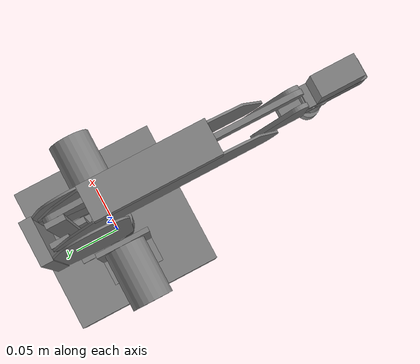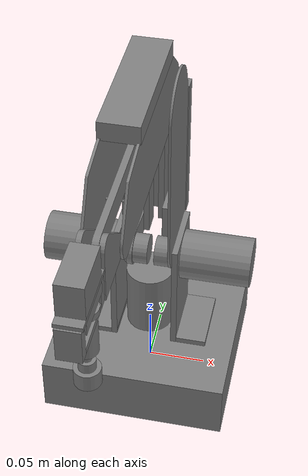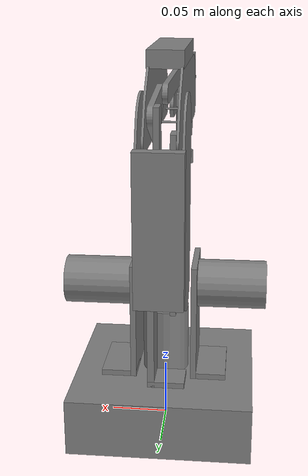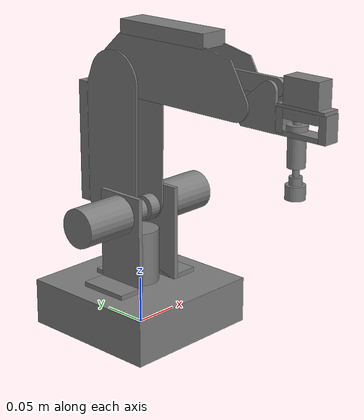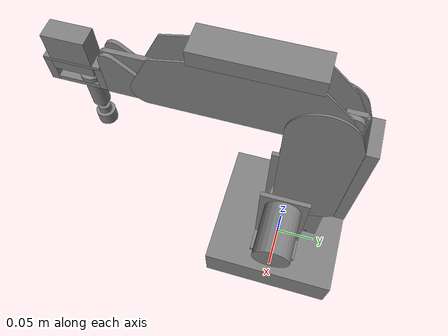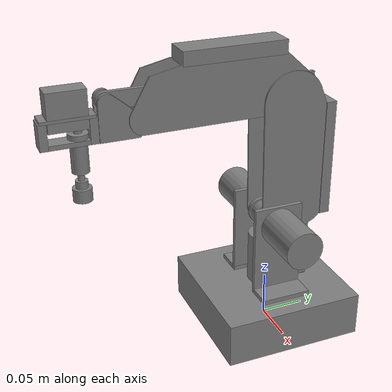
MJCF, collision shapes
<mujoco model="Dobot">
  <compiler angle="radian" meshdir="meshes/" />
  <option timestep="1e-3" solver="Newton" integrator="Euler"/>

  <asset>
    <mesh name="dobot_coppelia_link1_visible_vis_1" content_type="model/stl"
      file="dobot_coppelia_link1_visible_vis_1.stl" />
    <mesh name="dobot_coppelia_link1_visible_vis_2" content_type="model/stl"
      file="dobot_coppelia_link1_visible_vis_2.stl" />
    <mesh name="dobot_coppelia_link2_visible_vis_1" content_type="model/stl"
      file="dobot_coppelia_link2_visible_vis_1.stl" />
    <mesh name="dobot_coppelia_link2_visible_vis_2" content_type="model/stl"
      file="dobot_coppelia_link2_visible_vis_2.stl" />
    <mesh name="dobot_coppelia_link2_visible_vis_3" content_type="model/stl"
      file="dobot_coppelia_link2_visible_vis_3.stl" />
    <mesh name="dobot_coppelia_link2_visible_vis_4" content_type="model/stl"
      file="dobot_coppelia_link2_visible_vis_4.stl" />
    <mesh name="dobot_coppelia_link2_visible_vis_5" content_type="model/stl"
      file="dobot_coppelia_link2_visible_vis_5.stl" />
    <mesh name="dobot_coppelia_link2_visible_vis_6" content_type="model/stl"
      file="dobot_coppelia_link2_visible_vis_6.stl" />
    <mesh name="dobot_coppelia_link2_visible_vis_7" content_type="model/stl"
      file="dobot_coppelia_link2_visible_vis_7.stl" />
    <mesh name="dobot_coppelia_link2_visible_vis_8" content_type="model/stl"
      file="dobot_coppelia_link2_visible_vis_8.stl" />
    <mesh name="dobot_coppelia_link2_visible_vis_9" content_type="model/stl"
      file="dobot_coppelia_link2_visible_vis_9.stl" />
    <mesh name="dobot_coppelia_link2_visible_vis_10" content_type="model/stl"
      file="dobot_coppelia_link2_visible_vis_10.stl" />
    <mesh name="dobot_coppelia_link2_visible_vis_11" content_type="model/stl"
      file="dobot_coppelia_link2_visible_vis_11.stl" />
    <mesh name="dobot_coppelia_link2_visible_vis_12" content_type="model/stl"
      file="dobot_coppelia_link2_visible_vis_12.stl" />
    <mesh name="dobot_coppelia_link2_visible_vis_13" content_type="model/stl"
      file="dobot_coppelia_link2_visible_vis_13.stl" />
    <mesh name="dobot_coppelia_link2_visible_vis_14" content_type="model/stl"
      file="dobot_coppelia_link2_visible_vis_14.stl" />
    <mesh name="dobot_coppelia_link2_visible_vis_15" content_type="model/stl"
      file="dobot_coppelia_link2_visible_vis_15.stl" />
    <mesh name="dobot_coppelia_link_2_coll_1" content_type="model/stl"
      file="dobot_coppelia_link_2_coll_1.stl" />
    <mesh name="dobot_coppelia_link_2_coll_2" content_type="model/stl"
      file="dobot_coppelia_link_2_coll_2.stl" />
    <mesh name="dobot_coppelia_link_2_coll_3" content_type="model/stl"
      file="dobot_coppelia_link_2_coll_3.stl" />
    <mesh name="dobot_coppelia_link3_visible_vis_1" content_type="model/stl"
      file="dobot_coppelia_link3_visible_vis_1.stl" />
    <mesh name="dobot_coppelia_link3_visible_vis_2" content_type="model/stl"
      file="dobot_coppelia_link3_visible_vis_2.stl" />
    <mesh name="dobot_coppelia_link3_visible_vis_3" content_type="model/stl"
      file="dobot_coppelia_link3_visible_vis_3.stl" />
    <mesh name="dobot_coppelia_auxLink_coll_1" content_type="model/stl"
      file="dobot_coppelia_auxLink_coll_1.stl" />
    <mesh name="dobot_coppelia_auxLink4_visible_vis_1" content_type="model/stl"
      file="dobot_coppelia_auxLink4_visible_vis_1.stl" />
    <mesh name="dobot_coppelia_link_3_coll_1" content_type="model/stl"
      file="dobot_coppelia_link_3_coll_1.stl" />
    <mesh name="dobot_coppelia_link_3_coll_2" content_type="model/stl"
      file="dobot_coppelia_link_3_coll_2.stl" />
    <mesh name="dobot_coppelia_link_3_coll_3" content_type="model/stl"
      file="dobot_coppelia_link_3_coll_3.stl" />
    <mesh name="dobot_coppelia_link_3_coll_4" content_type="model/stl"
      file="dobot_coppelia_link_3_coll_4.stl" />
    <mesh name="dobot_coppelia_link_3_coll_5" content_type="model/stl"
      file="dobot_coppelia_link_3_coll_5.stl" />
    <mesh name="dobot_coppelia_link4_visible_vis_1" content_type="model/stl"
      file="dobot_coppelia_link4_visible_vis_1.stl" />
    <mesh name="dobot_coppelia_link4_visible_vis_2" content_type="model/stl"
      file="dobot_coppelia_link4_visible_vis_2.stl" />
    <mesh name="dobot_coppelia_link4_visible_vis_3" content_type="model/stl"
      file="dobot_coppelia_link4_visible_vis_3.stl" />
    <mesh name="dobot_coppelia_link_4_coll_1" content_type="model/stl"
      file="dobot_coppelia_link_4_coll_1.stl" />
    <mesh name="dobot_coppelia_link_4_coll_2" content_type="model/stl"
      file="dobot_coppelia_link_4_coll_2.stl" />
    <mesh name="dobot_coppelia_link_4_coll_3" content_type="model/stl"
      file="dobot_coppelia_link_4_coll_3.stl" />
    <mesh name="dobot_coppelia_link_4_coll_4" content_type="model/stl"
      file="dobot_coppelia_link_4_coll_4.stl" />
    <mesh name="dobot_coppelia_link_4_coll_5" content_type="model/stl"
      file="dobot_coppelia_link_4_coll_5.stl" />
    <mesh name="dobot_coppelia_link_4_coll_6" content_type="model/stl"
      file="dobot_coppelia_link_4_coll_6.stl" />
    <mesh name="dobot_coppelia_link_4_coll_7" content_type="model/stl"
      file="dobot_coppelia_link_4_coll_7.stl" />
    <mesh name="dobot_coppelia_link_4_coll_8" content_type="model/stl"
      file="dobot_coppelia_link_4_coll_8.stl" />
    <mesh name="dobot_coppelia_link_4_coll_9" content_type="model/stl"
      file="dobot_coppelia_link_4_coll_9.stl" />
    <mesh name="dobot_coppelia_link_4_coll_10" content_type="model/stl"
      file="dobot_coppelia_link_4_coll_10.stl" />
    <mesh name="dobot_coppelia_link_4_coll_11" content_type="model/stl"
      file="dobot_coppelia_link_4_coll_11.stl" />
    <mesh name="dobot_coppelia_link_4_coll_12" content_type="model/stl"
      file="dobot_coppelia_link_4_coll_12.stl" />
    <mesh name="dobot_coppelia_link5_visible_vis_1" content_type="model/stl"
      file="dobot_coppelia_link5_visible_vis_1.stl" />
    <mesh name="dobot_coppelia_auxLink_2_coll_1" content_type="model/stl"
      file="dobot_coppelia_auxLink_2_coll_1.stl" />
    <mesh name="dobot_coppelia_auxLink5_visible_vis_1" content_type="model/stl"
      file="dobot_coppelia_auxLink5_visible_vis_1.stl" />
    <mesh name="dobot_coppelia_suctionCup_visible_vis_1" content_type="model/stl"
      file="dobot_coppelia_suctionCup_visible_vis_1.stl" />
    <mesh name="dobot_coppelia_suctionCup_link2_visible_vis_1" content_type="model/stl"
      file="dobot_coppelia_suctionCup_link2_visible_vis_1.stl" />
    <mesh name="dobot_coppelia_suctionCup_link2_visible_vis_2" content_type="model/stl"
      file="dobot_coppelia_suctionCup_link2_visible_vis_2.stl" />
    <mesh name="dobot_coppelia_suctionCup_link2_visible_vis_3" content_type="model/stl"
      file="dobot_coppelia_suctionCup_link2_visible_vis_3.stl" />
    <mesh name="dobot_coppelia_auxLink_3_coll_1" content_type="model/stl"
      file="dobot_coppelia_auxLink_3_coll_1.stl" />
    <mesh name="dobot_coppelia_auxLink2_visible_vis_1" content_type="model/stl"
      file="dobot_coppelia_auxLink2_visible_vis_1.stl" />
    <mesh name="dobot_coppelia_auxLink3_visible_vis_1" content_type="model/stl"
      file="dobot_coppelia_auxLink3_visible_vis_1.stl" />
    <mesh name="dobot_coppelia_auxLink1_visible_vis_1" content_type="model/stl"
      file="dobot_coppelia_auxLink1_visible_vis_1.stl" />
  </asset>

  <worldbody>
    <body name="dobot_base">
      <geom name="Dobot" size="0.025 0.079 0.079" pos="0 0 0.025018" quat="0.5 -0.5 -0.5 -0.5"
        type="box" group="3" />
      <geom name="link1_visible" pos="0 0 0.025018"
        quat="1 0 0 0"
        type="mesh" contype="0" conaffinity="0" group="1" density="0" rgba="1 1 1 1"
        mesh="dobot_coppelia_link1_visible_vis_1" />
      <geom pos="0 0 0.025018" quat="1 0 0 0" type="mesh"
        contype="0" conaffinity="0" group="1" density="0" rgba="0.2 0.2 0.2 1"
        mesh="dobot_coppelia_link1_visible_vis_2" />
      <body name="shoulder_base_link" pos="0 -1e-06 0.049188"
        quat="1 0 0 0">
        <inertial pos="0.000515 0.002043 0.059772" quat="0.489394 0.507 0.491229 0.511996"
          mass="2.364" diaginertia="0.00693354 0.00515403 0.00272303" />
        <joint name="motor1" pos="0 0 0" axis="0 0 1" range="-1.5708 1.5708"
          actuatorfrcrange="-20 20" />
        <geom name="link" size="0.0025 0.028006 0.0519085" pos="-0.0265 0 0.052847"
          quat="1 0 0 0" type="box" group="3" />
        <geom size="0.0025 0.0155 0.028" pos="0.0395 1e-06 0.003442" quat="0.5 -0.5 -0.5 -0.5"
          type="box" group="3" />
        <geom size="0.0025 0.028006 0.051908" pos="0.0265 0 0.052847"
          quat="0 0 0 -1" type="box" group="3" />
        <geom size="0.0211522 0.0302674" pos="0.058233 1e-06 0.081754"
          quat="-0.541644 -0.454556 0.541648 0.454552" type="cylinder" group="3" />
        <geom size="0.0025 0.0132295 0.016" pos="-0.004 0.033732 0.003442"
          quat="0.707107 0 -0.707107 0" type="box" group="3" />
        <geom size="0.003 0.0132295 0.054967" pos="0.009 0.033732 0.05591"
          quat="0 0 0 1" type="box" group="3" />
        <geom size="0.0025 0.0155 0.028" pos="-0.0395 1e-06 0.003442" quat="0.5 -0.5 -0.5 -0.5"
          type="box" group="3" />
        <geom size="0.0205005 0.029501" pos="0 0 0.029943" quat="-1 0 0 0" type="cylinder" group="3" />
        <geom size="0.0211523 0.0301254" pos="-0.058375 1e-06 0.081754"
          quat="-0.541642 -0.454559 0.54165 0.454549" type="cylinder" group="3" />
        <geom size="0.0129715 0.00625005" pos="0.01175 -2.1e-05 0.08081"
          quat="0.322671 -0.629194 0.322667 -0.629193" type="cylinder" group="3" />
        <geom size="0.0129714 0.0062501" pos="-0.00675 -3.5e-05 0.080828"
          quat="0.119642 -0.696911 0.119641 -0.696912" type="cylinder" group="3" />
        <geom name="link2_visible" pos="0 0.000125 0.052998"
          quat="1 0 0 0" type="mesh" contype="0" conaffinity="0"
          group="1" density="0" rgba="1 1 1 1" mesh="dobot_coppelia_link2_visible_vis_1" />
        <geom pos="0 0.000125 0.052998" quat="1 0 0 0" type="mesh"
          contype="0" conaffinity="0" group="1" density="0" rgba="0.2 0.2 0.2 1"
          mesh="dobot_coppelia_link2_visible_vis_2" />
        <geom pos="0 0.000125 0.052998" quat="1 0 0 0" type="mesh"
          contype="0" conaffinity="0" group="1" density="0" rgba="0.2 0.2 0.2 1"
          mesh="dobot_coppelia_link2_visible_vis_3" />
        <geom pos="0 0.000125 0.052998" quat="1 0 0 0" type="mesh"
          contype="0" conaffinity="0" group="1" density="0" rgba="0.2 0.2 0.2 1"
          mesh="dobot_coppelia_link2_visible_vis_4" />
        <geom pos="0 0.000125 0.052998" quat="1 0 0 0" type="mesh"
          contype="0" conaffinity="0" group="1" density="0" rgba="0.2 0.2 0.2 1"
          mesh="dobot_coppelia_link2_visible_vis_5" />
        <geom pos="0 0.000125 0.052998" quat="1 0 0 0" type="mesh"
          contype="0" conaffinity="0" group="1" density="0" rgba="0.2 0.2 0.2 1"
          mesh="dobot_coppelia_link2_visible_vis_6" />
        <geom pos="0 0.000125 0.052998" quat="1 0 0 0" type="mesh"
          contype="0" conaffinity="0" group="1" density="0" rgba="0.2 0.2 0.2 1"
          mesh="dobot_coppelia_link2_visible_vis_7" />
        <geom pos="0 0.000125 0.052998" quat="1 0 0 0" type="mesh"
          contype="0" conaffinity="0" group="1" density="0" rgba="0.2 0.2 0.2 1"
          mesh="dobot_coppelia_link2_visible_vis_8" />
        <geom pos="0 0.000125 0.052998" quat="1 0 0 0" type="mesh"
          contype="0" conaffinity="0" group="1" density="0" rgba="0.2 0.2 0.2 1"
          mesh="dobot_coppelia_link2_visible_vis_9" />
        <geom pos="0 0.000125 0.052998" quat="1 0 0 0" type="mesh"
          contype="0" conaffinity="0" group="1" density="0" rgba="0.2 0.2 0.2 1"
          mesh="dobot_coppelia_link2_visible_vis_10" />
        <geom pos="0 0.000125 0.052998" quat="1 0 0 0" type="mesh"
          contype="0" conaffinity="0" group="1" density="0" rgba="0.2 0.2 0.2 1"
          mesh="dobot_coppelia_link2_visible_vis_11" />
        <geom pos="0 0.000125 0.052998" quat="1 0 0 0" type="mesh"
          contype="0" conaffinity="0" group="1" density="0" rgba="0.2 0.2 0.2 1"
          mesh="dobot_coppelia_link2_visible_vis_12" />
        <geom pos="0 0.000125 0.052998" quat="1 0 0 0" type="mesh"
          contype="0" conaffinity="0" group="1" density="0" rgba="0.2 0.2 0.2 1"
          mesh="dobot_coppelia_link2_visible_vis_13" />
        <geom pos="0 0.000125 0.052998" quat="1 0 0 0" type="mesh"
          contype="0" conaffinity="0" group="1" density="0" rgba="0.2 0.2 0.2 1"
          mesh="dobot_coppelia_link2_visible_vis_14" />
        <geom pos="0 0.000125 0.052998" quat="1 0 0 0" type="mesh"
          contype="0" conaffinity="0" group="1" density="0" rgba="1 1 1 1"
          mesh="dobot_coppelia_link2_visible_vis_15" />
        <body name="lower_arm_link" pos="0.03565 -2.1e-05 0.08081" quat="0.707107 0 0.707107 0">
          <inertial pos="-0.075356 0.024599 -0.03565"
            quat="0.999947 0.0102627 -1.50046e-06 -1.62319e-05" mass="2.06529"
            diaginertia="0.0045309 0.00394512 0.000997483" />
          <joint name="motor2" pos="0 0 0" axis="0 0 1" range="0 1.48353" actuatorfrcrange="-20 20" />
          <geom pos="-0.076449 0.025292 -0.03565" quat="0.707107 0 -0.707107 0" type="mesh"
            mesh="dobot_coppelia_link_2_coll_1" group="3" />
          <geom pos="-0.076449 0.025292 -0.03565" quat="0.707107 0 -0.707107 0" type="mesh"
            mesh="dobot_coppelia_link_2_coll_2" group="3" />
          <geom pos="-0.076449 0.025292 -0.03565" quat="0.707107 0 -0.707107 0" type="mesh"
            mesh="dobot_coppelia_link_2_coll_3" group="3" />
          <geom name="link3_visible" pos="-0.076448 0.024891 -0.03565" quat="0.707107 0 -0.707107 0"
            type="mesh" contype="0" conaffinity="0" group="1" density="0" rgba="1 1 1 1"
            mesh="dobot_coppelia_link3_visible_vis_1" />
          <geom pos="-0.076448 0.024891 -0.03565" quat="0.707107 0 -0.707107 0" type="mesh"
            contype="0" conaffinity="0" group="1" density="0" rgba="1 1 0.3 1"
            mesh="dobot_coppelia_link3_visible_vis_2" />
          <geom pos="-0.076448 0.024891 -0.03565" quat="0.707107 0 -0.707107 0" type="mesh"
            contype="0" conaffinity="0" group="1" density="0" rgba="0.2 0.2 0.2 1"
            mesh="dobot_coppelia_link3_visible_vis_3" />
          <body name="auxLink" pos="-0.135019 7.6e-05 -0.03565"
            quat="1 0 0 0">
            <inertial pos="-0.017105 0.001735 0.0085"
              quat="0.74315 0.669125 -1.94499e-06 2.16016e-06"
              mass="0.018" diaginertia="1.02931e-05 8.48064e-06 1.88749e-06" />
            <joint name="auxJoint_2" pos="0 0 0" axis="0 0 1" />
            <geom name="auxLink" pos="-0.013821 0.002467 0.0085" quat="0.707107 0 -0.707107 0"
              type="mesh" mesh="dobot_coppelia_auxLink_coll_1" group="3" />
            <geom name="auxLink4_visible" pos="-0.013859 0.002424 0.0085"
              quat="0.707107 0 -0.707107 0" type="mesh" contype="0" conaffinity="0" group="1"
              density="0" rgba="0.2 0.2 0.2 1" mesh="dobot_coppelia_auxLink4_visible_vis_1" />
          </body>
          <body name="upper_arm_link" pos="-0.135019 7.6e-05 -0.03565"
            quat="1 0 0 0">
            <inertial pos="-0.026985 -0.054645 -1e-06"
              quat="0.706203 0.70801 1.77542e-05 -2.21523e-05" mass="0.118"
              diaginertia="0.000350961 0.000307889 5.98155e-05" />
            <joint name="auxMotor1" pos="0 0 0" axis="0 0 1" />
            <geom pos="-0.030008 -0.05364 0" quat="0.707107 0 -0.707107 0" type="mesh"
              mesh="dobot_coppelia_link_3_coll_1" group="3" />
            <geom pos="-0.030008 -0.05364 0" quat="0.707107 0 -0.707107 0" type="mesh"
              mesh="dobot_coppelia_link_3_coll_2" group="3" />
            <geom pos="-0.030008 -0.05364 0" quat="0.707107 0 -0.707107 0" type="mesh"
              mesh="dobot_coppelia_link_3_coll_3" group="3" />
            <geom pos="-0.030008 -0.05364 0" quat="0.707107 0 -0.707107 0" type="mesh"
              mesh="dobot_coppelia_link_3_coll_4" group="3" />
            <geom pos="-0.030008 -0.05364 0" quat="0.707107 0 -0.707107 0" type="mesh"
              mesh="dobot_coppelia_link_3_coll_5" group="3" />
            <geom name="link4_visible" pos="-0.030038 -0.053551 1e-06" quat="0.707107 0 -0.707107 0"
              type="mesh" contype="0" conaffinity="0" group="1" density="0" rgba="1 1 1 1"
              mesh="dobot_coppelia_link4_visible_vis_1" />
            <geom pos="-0.030038 -0.053551 1e-06" quat="0.707107 0 -0.707107 0" type="mesh"
              contype="0" conaffinity="0" group="1" density="0" rgba="1 1 0.3 1"
              mesh="dobot_coppelia_link4_visible_vis_2" />
            <geom pos="-0.030038 -0.053551 1e-06" quat="0.707107 0 -0.707107 0" type="mesh"
              contype="0" conaffinity="0" group="1" density="0" rgba="0.2 0.2 0.2 1"
              mesh="dobot_coppelia_link4_visible_vis_3" />
            <body name="tool_link" pos="-7.8e-05 -0.147055 0"
              quat="-1 1.73205e-07 1.73205e-07 -1.73205e-07">
              <inertial pos="-0.012026 -0.051144 1.2e-05"
                quat="0.763358 0.645976 -7.70174e-05 9.25866e-05" mass="0.13"
                diaginertia="0.000231364 0.000187365 5.99645e-05" />
              <joint name="auxMotor2" pos="0 0 0" axis="0 0 1" />
              <geom pos="-0.015429 -0.044878 3.5e-05" quat="0.707107 0 -0.707107 0" type="mesh"
                mesh="dobot_coppelia_link_4_coll_1" group="3" />
              <geom pos="-0.015429 -0.044878 3.5e-05" quat="0.707107 0 -0.707107 0" type="mesh"
                mesh="dobot_coppelia_link_4_coll_2" group="3" />
              <geom pos="-0.015429 -0.044878 3.5e-05" quat="0.707107 0 -0.707107 0" type="mesh"
                mesh="dobot_coppelia_link_4_coll_3" group="3" />
              <geom pos="-0.015429 -0.044878 3.5e-05" quat="0.707107 0 -0.707107 0" type="mesh"
                mesh="dobot_coppelia_link_4_coll_4" group="3" />
              <geom pos="-0.015429 -0.044878 3.5e-05" quat="0.707107 0 -0.707107 0" type="mesh"
                mesh="dobot_coppelia_link_4_coll_5" group="3" />
              <geom pos="-0.015429 -0.044878 3.5e-05" quat="0.707107 0 -0.707107 0" type="mesh"
                mesh="dobot_coppelia_link_4_coll_6" group="3" />
              <geom pos="-0.015429 -0.044878 3.5e-05" quat="0.707107 0 -0.707107 0" type="mesh"
                mesh="dobot_coppelia_link_4_coll_7" group="3" />
              <geom pos="-0.015429 -0.044878 3.5e-05" quat="0.707107 0 -0.707107 0" type="mesh"
                mesh="dobot_coppelia_link_4_coll_8" group="3" />
              <geom pos="-0.015429 -0.044878 3.5e-05" quat="0.707107 0 -0.707107 0" type="mesh"
                mesh="dobot_coppelia_link_4_coll_9" group="3" />
              <geom pos="-0.015429 -0.044878 3.5e-05" quat="0.707107 0 -0.707107 0" type="mesh"
                mesh="dobot_coppelia_link_4_coll_10" group="3" />
              <geom pos="-0.015429 -0.044878 3.5e-05" quat="0.707107 0 -0.707107 0" type="mesh"
                mesh="dobot_coppelia_link_4_coll_11" group="3" />
              <geom pos="-0.015429 -0.044878 3.5e-05" quat="0.707107 0 -0.707107 0" type="mesh"
                mesh="dobot_coppelia_link_4_coll_12" group="3" />
              <geom name="link5_visible" pos="-0.009484 -0.044867 -2.1e-05"
                quat="0.707107 0 -0.707107 0" type="mesh" contype="0" conaffinity="0" group="1"
                density="0" rgba="0.2 0.2 0.2 1" mesh="dobot_coppelia_link5_visible_vis_1" />
              <body name="auxLink_2" pos="-0.027689 -0.032943 0.006"
                quat="-1 1.73205e-07 1.73205e-07 -1.73205e-07">
                <inertial pos="2.9e-05 0.07352 -0.0025" quat="0.707107 0.707107 0 0" mass="0.018"
                  diaginertia="3.94263e-05 3.89891e-05 5.1226e-07" />
                <joint name="auxJoint_3" pos="0 0 0" axis="0 0 1" />
                <geom pos="2.9e-05 0.07352 -0.0025" quat="0.707107 0 -0.707107 0" type="mesh"
                  mesh="dobot_coppelia_auxLink_2_coll_1" group="3" />
                <geom name="auxLink5_visible" pos="2.9e-05 0.07352 -0.006003"
                  quat="0.707107 0 -0.707107 0" type="mesh" contype="0" conaffinity="0" group="1"
                  density="0" rgba="0.2 0.2 0.2 1" mesh="dobot_coppelia_auxLink5_visible_vis_1" />
              </body>
              <body name="suctionCup" pos="0.011773 -0.059706 3.4e-05" quat="0.707107 0 -0.707107 0">
                <inertial pos="0 0 -0.0163" mass="0.08"
                  diaginertia="7.58788e-06 7.58788e-06 3.21133e-06" />
                <joint name="motor4" pos="0 0 0" axis="0 0 1" range="-1.5708 1.5708"
                  actuatorfrcrange="-20 20" />
                <geom name="suctionCup" size="0.0089738 0.0150005" pos="0 0 -0.0163"
                  quat="6.00024e-06 -8.25047e-07 0.000291327 1" type="cylinder" group="3" />
                <geom name="suctionCup_visible" pos="-7e-05 0 -0.0163"
                  quat="1 0 0 0" type="mesh" contype="0"
                  conaffinity="0" group="1" density="0" rgba="0.2 0.2 0.2 1"
                  mesh="dobot_coppelia_suctionCup_visible_vis_1" />
                <body name="suctionCup_link2" pos="0 0 -0.0353"
                  quat="0.999955 -0.00926683 -0.00102493 -0.00159589">
                  <inertial pos="0 0.000224 -0.013224"
                    quat="1 -0.000116785 0.000235739 0" mass="0.08"
                    diaginertia="1.31253e-05 1.31253e-05 3.02958e-06" />
                  <joint name="suctionCup_play" pos="0 0 0" axis="0 0 1" type="slide"
                    range="0 0.005"
                    actuatorfrcrange="-50 50" />
                  <geom name="suctionCup_link2" size="0.00999761 0.00700407"
                    pos="-7e-06 0.000347 -0.019998" quat="-0.858513 -0.00744563 -0.005658 0.512707"
                    type="cylinder" group="3" />
                  <geom size="0.00349995 0.0145008" pos="6.9e-05 -0.000192 0.009498"
                    quat="-0.858513 -0.00744563 -0.005658 0.512707" type="cylinder" group="3" />
                  <geom size="0.0064645 0.00400104" pos="2.4e-05 0.000147 -0.008999"
                    quat="-0.858513 -0.00744563 -0.005658 0.512707" type="cylinder" group="3" />
                  <geom name="suctionCup_link2_visible" pos="3.3e-05 -3.4e-05 -0.001502"
                    quat="0.999955 0.00926706 0.00102516 0.00159589" type="mesh" contype="0"
                    conaffinity="0" group="1" density="0" rgba="0.2 0.2 0.2 1"
                    mesh="dobot_coppelia_suctionCup_link2_visible_vis_1" />
                  <geom pos="3.3e-05 -3.4e-05 -0.001502"
                    quat="0.999955 0.00926706 0.00102516 0.00159589" type="mesh" contype="0"
                    conaffinity="0" group="1" density="0" rgba="1 1 1 1"
                    mesh="dobot_coppelia_suctionCup_link2_visible_vis_2" />
                  <geom pos="3.3e-05 -3.4e-05 -0.001502"
                    quat="0.999955 0.00926706 0.00102516 0.00159589" type="mesh" contype="0"
                    conaffinity="0" group="1" density="0" rgba="0.81 0.81 0.81 1"
                    mesh="dobot_coppelia_suctionCup_link2_visible_vis_3" />
                </body>
              </body>
            </body>
          </body>
        </body>
        <body name="auxLink_3" pos="-0.0307 -3.5e-05 0.080828" quat="0.707107 0 0.707107 0">
          <inertial pos="-1.3e-05 0.015974 0.0152" quat="0.707109 0.707104 8.41457e-07 8.41451e-07"
            mass="0.018" diaginertia="3.59541e-05 3.1164e-05 5.20493e-06" />
          <joint name="motor3" pos="0 0 0" axis="0 0 1" range="-0.174533 1.309"
            actuatorfrcrange="-20 20" />
          <geom pos="-1.3e-05 0.018536 0.0152" quat="0.707107 0 -0.707107 0" type="mesh"
            mesh="dobot_coppelia_auxLink_3_coll_1" group="3" />
          <geom name="auxLink2_visible" pos="-1.3e-05 0.018536 0.02145"
            quat="0.707107 0 -0.707107 0"
            type="mesh" contype="0" conaffinity="0" group="1" density="0" rgba="0.2 0.2 0.2 1"
            mesh="dobot_coppelia_auxLink2_visible_vis_1" />
          <body name="auxLink_4" pos="1.3e-05 0.043012 0.01755"
            quat="-1 1.73205e-07 1.73205e-07 -1.73205e-07">
            <inertial pos="-0.067526 2.4e-05 0.00265" mass="0.018"
              diaginertia="3.55996e-05 3.51513e-05 5.23289e-07" />
            <joint name="auxJoint_4" pos="0 0 0" axis="0 0 1" />
            <geom size="0.0025 0.008998 0.0765" pos="-0.067526 2.4e-05 0.00265"
              quat="-9.90595e-06 -0.707107 -8.72377e-06 0.707107" type="box" group="3" />
            <geom name="auxLink3_visible" pos="-0.067526 2.4e-05 0.00265"
              quat="0.707107 0 -0.707107 0" type="mesh" contype="0" conaffinity="0" group="1"
              density="0" rgba="0.2 0.2 0.2 1" mesh="dobot_coppelia_auxLink3_visible_vis_1" />
          </body>
        </body>
        <body name="auxLink_5" pos="0.00615 0.037927 0.101037" quat="0.707107 0 0.707107 0">
          <inertial pos="-0.067492 3.4e-05 -0.00265" mass="0.018"
            diaginertia="3.55997e-05 3.51514e-05 5.2329e-07" />
          <joint name="auxJoint" pos="0 0 0" axis="0 0 1" />
          <geom size="0.0025 0.008998 0.0765" pos="-0.067492 3.4e-05 -0.00265"
            quat="8.14703e-06 0.707107 1.06999e-05 -0.707107" type="box" group="3" />
          <geom name="auxLink1_visible" pos="-0.067492 3.4e-05 -0.00265"
            quat="0.707107 0 -0.707107 0"
            type="mesh" contype="0" conaffinity="0" group="1" density="0" rgba="0.2 0.2 0.2 1"
            mesh="dobot_coppelia_auxLink1_visible_vis_1" />
        </body>
      </body>
    </body>
  </worldbody>

  <equality>
    <connect name="auxConnect_4_3" body1="auxLink_4" anchor="-0.135 0 0" body2="upper_arm_link"
      solimp="1 1 0.001 0.5 2" />
    <connect name="auxConnect_5_1" body1="auxLink_5" anchor="-0.135 0 0" body2="auxLink"
      solimp="1 1 0.001 0.5 2" />
    <connect name="auxConnect_1_2" body1="auxLink" anchor="-0.02774 -0.03294 0.00615"
      body2="auxLink_2" solimp="1 1 0.001 0.5 2" />
  </equality>

  <actuator>
    <position name="shoulder_pan" joint="motor1" ctrlrange="-1.5708 1.5708" forcerange="-20 20"
      kp="2.5" kv="1" />
    <position name="shoulder_lift" joint="motor2" ctrlrange="0 1.48353" forcerange="-20 20" kp="5"
      kv="1" />
    <position name="elbow_lift" joint="motor3" ctrlrange="-0.174533 1.309" forcerange="-20 20"
      kp="5" kv="1" />
    <position name="tool_roll" joint="motor4" ctrlrange="-1.5708 1.5708" forcerange="-5 5"
      kp="0.05" kv="0.01" />

    <adhesion name="suction_cup_pump" body="suctionCup_link2" ctrlrange="0 1" gain="5"/>
  </actuator>

  <contact>
    <exclude body1="dobot_base" body2="shoulder_base_link" />
  </contact>
</mujoco>
